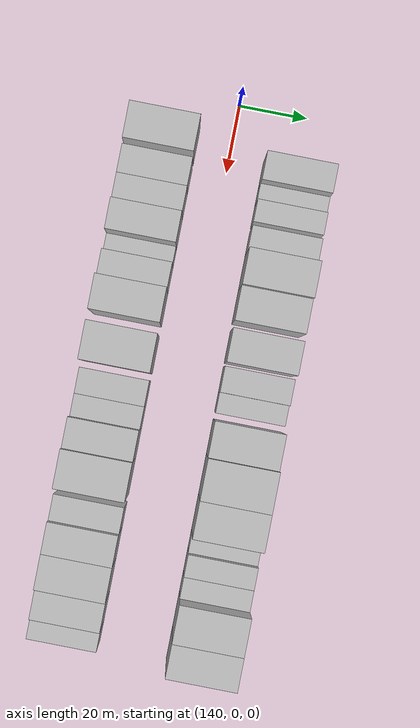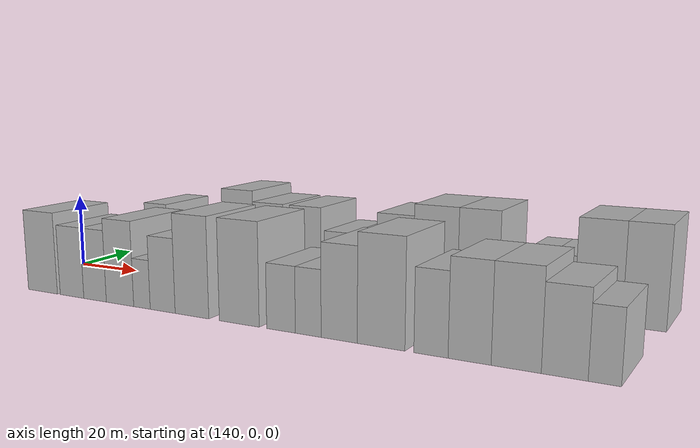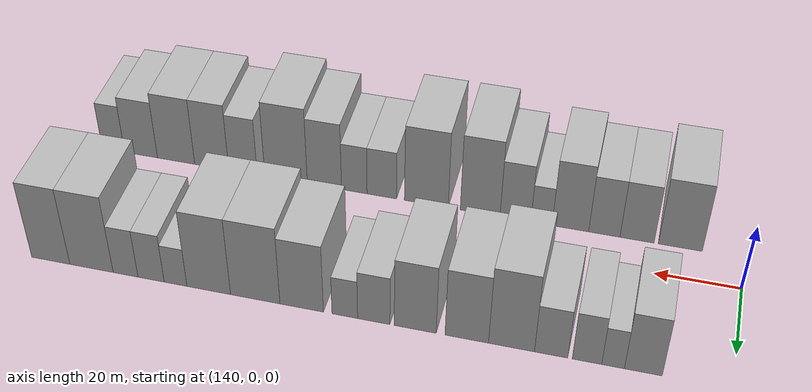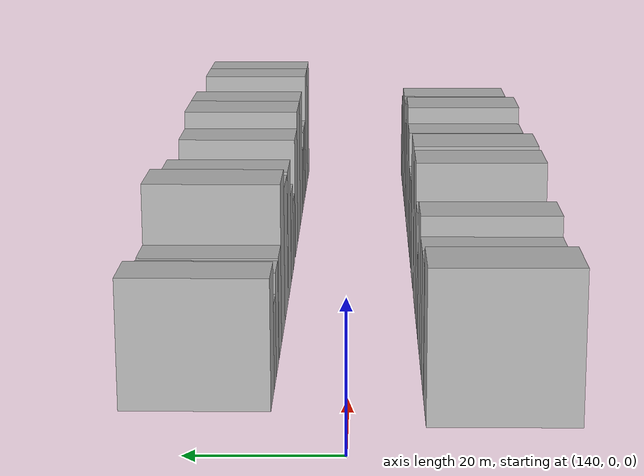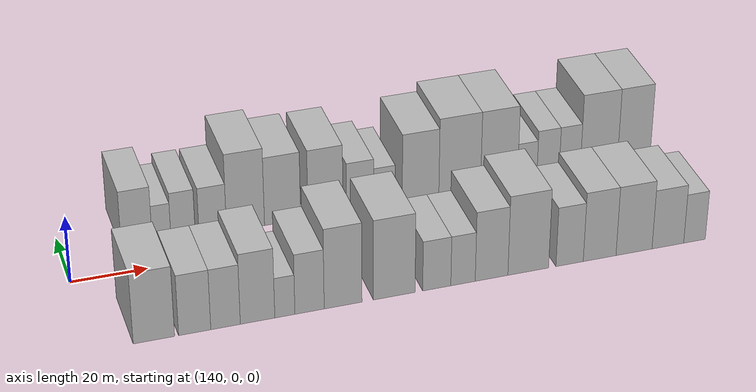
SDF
<sdf version="1.6">
 <world name="default">
  <model name="building_17">
   <static>1</static>
   <pose>159.3237 20.0000 0 0.000000 0.000000 1.570796</pose>
   <link name="link">
    <pose>0 0 9.00 0 0 0</pose>
    <collision name="collision"><geometry><box><size>20.0000 8.1764 18.0000</size></box></geometry></collision>
    <visual name="visual">
     <cast_shadows>0</cast_shadows>
     <geometry><box><size>20.0000 8.1764 18.0000</size></box></geometry>
     <material>
      <script>
       <uri>model://HANNAS_wall/materials/scripts</uri>
       <uri>model://HANNAS_wall/materials/textures</uri>
       <name>vrc/HANNAS_wall</name>
      </script>
     </material>
    </visual>
   </link>
  </model>
  <model name="building_18">
   <static>1</static>
   <pose>165.8892 20.0000 0 0.000000 0.000000 1.570796</pose>
   <link name="link">
    <pose>0 0 6.00 0 0 0</pose>
    <collision name="collision"><geometry><box><size>20.0000 4.9546 12.0000</size></box></geometry></collision>
    <visual name="visual">
     <cast_shadows>0</cast_shadows>
     <geometry><box><size>20.0000 4.9546 12.0000</size></box></geometry>
     <material>
      <script>
       <uri>model://HANNAS_wall/materials/scripts</uri>
       <uri>model://HANNAS_wall/materials/textures</uri>
       <name>vrc/HANNAS_wall</name>
      </script>
     </material>
    </visual>
   </link>
  </model>
  <model name="building_19">
   <static>1</static>
   <pose>171.5991 20.0000 0 0.000000 0.000000 1.570796</pose>
   <link name="link">
    <pose>0 0 7.50 0 0 0</pose>
    <collision name="collision"><geometry><box><size>20.0000 6.4652 15.0000</size></box></geometry></collision>
    <visual name="visual">
     <cast_shadows>0</cast_shadows>
     <geometry><box><size>20.0000 6.4652 15.0000</size></box></geometry>
     <material>
      <script>
       <uri>model://HANNAS_wall/materials/scripts</uri>
       <uri>model://HANNAS_wall/materials/textures</uri>
       <name>vrc/HANNAS_wall</name>
      </script>
     </material>
    </visual>
   </link>
  </model>
  <model name="building_20">
   <static>1</static>
   <pose>179.5096 20.0000 0 0.000000 0.000000 1.570796</pose>
   <link name="link">
    <pose>0 0 7.50 0 0 0</pose>
    <collision name="collision"><geometry><box><size>20.0000 7.3557 15.0000</size></box></geometry></collision>
    <visual name="visual">
     <cast_shadows>0</cast_shadows>
     <geometry><box><size>20.0000 7.3557 15.0000</size></box></geometry>
     <material>
      <script>
       <uri>model://HANNAS_wall/materials/scripts</uri>
       <uri>model://HANNAS_wall/materials/textures</uri>
       <name>vrc/HANNAS_wall</name>
      </script>
     </material>
    </visual>
   </link>
  </model>
  <model name="building_21">
   <static>1</static>
   <pose>188.3211 20.0000 0 0.000000 0.000000 1.570796</pose>
   <link name="link">
    <pose>0 0 12.00 0 0 0</pose>
    <collision name="collision"><geometry><box><size>20.0000 10.2673 24.0000</size></box></geometry></collision>
    <visual name="visual">
     <cast_shadows>0</cast_shadows>
     <geometry><box><size>20.0000 10.2673 24.0000</size></box></geometry>
     <material>
      <script>
       <uri>model://HANNAS_wall/materials/scripts</uri>
       <uri>model://HANNAS_wall/materials/textures</uri>
       <name>vrc/HANNAS_wall</name>
      </script>
     </material>
    </visual>
   </link>
  </model>
  <model name="building_22">
   <static>1</static>
   <pose>198.3743 20.0000 0 0.000000 0.000000 1.570796</pose>
   <link name="link">
    <pose>0 0 10.50 0 0 0</pose>
    <collision name="collision"><geometry><box><size>20.0000 9.8392 21.0000</size></box></geometry></collision>
    <visual name="visual">
     <cast_shadows>0</cast_shadows>
     <geometry><box><size>20.0000 9.8392 21.0000</size></box></geometry>
     <material>
      <script>
       <uri>model://HANNAS_wall/materials/scripts</uri>
       <uri>model://HANNAS_wall/materials/textures</uri>
       <name>vrc/HANNAS_wall</name>
      </script>
     </material>
    </visual>
   </link>
  </model>
  <model name="building_23">
   <static>1</static>
   <pose>210.1101 20.0000 0 0.000000 0.000000 1.570796</pose>
   <link name="link">
    <pose>0 0 10.50 0 0 0</pose>
    <collision name="collision"><geometry><box><size>20.0000 9.6324 21.0000</size></box></geometry></collision>
    <visual name="visual">
     <cast_shadows>0</cast_shadows>
     <geometry><box><size>20.0000 9.6324 21.0000</size></box></geometry>
     <material>
      <script>
       <uri>model://HANNAS_wall/materials/scripts</uri>
       <uri>model://HANNAS_wall/materials/textures</uri>
       <name>vrc/HANNAS_wall</name>
      </script>
     </material>
    </visual>
   </link>
  </model>
  <model name="building_24">
   <static>1</static>
   <pose>219.6738 20.0000 0 0.000000 0.000000 1.570796</pose>
   <link name="link">
    <pose>0 0 7.50 0 0 0</pose>
    <collision name="collision"><geometry><box><size>20.0000 7.4949 15.0000</size></box></geometry></collision>
    <visual name="visual">
     <cast_shadows>0</cast_shadows>
     <geometry><box><size>20.0000 7.4949 15.0000</size></box></geometry>
     <material>
      <script>
       <uri>model://HANNAS_wall/materials/scripts</uri>
       <uri>model://HANNAS_wall/materials/textures</uri>
       <name>vrc/HANNAS_wall</name>
      </script>
     </material>
    </visual>
   </link>
  </model>
  <model name="building_25">
   <static>1</static>
   <pose>226.4071 20.0000 0 0.000000 0.000000 1.570796</pose>
   <link name="link">
    <pose>0 0 6.00 0 0 0</pose>
    <collision name="collision"><geometry><box><size>20.0000 5.9717 12.0000</size></box></geometry></collision>
    <visual name="visual">
     <cast_shadows>0</cast_shadows>
     <geometry><box><size>20.0000 5.9717 12.0000</size></box></geometry>
     <material>
      <script>
       <uri>model://HANNAS_wall/materials/scripts</uri>
       <uri>model://HANNAS_wall/materials/textures</uri>
       <name>vrc/HANNAS_wall</name>
      </script>
     </material>
    </visual>
   </link>
  </model>
  <model name="building_26">
   <static>1</static>
   <pose>236.5378 20.0000 0 0.000000 0.000000 1.570796</pose>
   <link name="link">
    <pose>0 0 10.50 0 0 0</pose>
    <collision name="collision"><geometry><box><size>20.0000 10.2896 21.0000</size></box></geometry></collision>
    <visual name="visual">
     <cast_shadows>0</cast_shadows>
     <geometry><box><size>20.0000 10.2896 21.0000</size></box></geometry>
     <material>
      <script>
       <uri>model://HANNAS_wall/materials/scripts</uri>
       <uri>model://HANNAS_wall/materials/textures</uri>
       <name>vrc/HANNAS_wall</name>
      </script>
     </material>
    </visual>
   </link>
  </model>
  <model name="building_27">
   <static>1</static>
   <pose>247.5895 20.0000 0 0.000000 0.000000 1.570796</pose>
   <link name="link">
    <pose>0 0 12.00 0 0 0</pose>
    <collision name="collision"><geometry><box><size>20.0000 11.8139 24.0000</size></box></geometry></collision>
    <visual name="visual">
     <cast_shadows>0</cast_shadows>
     <geometry><box><size>20.0000 11.8139 24.0000</size></box></geometry>
     <material>
      <script>
       <uri>model://HANNAS_wall/materials/scripts</uri>
       <uri>model://HANNAS_wall/materials/textures</uri>
       <name>vrc/HANNAS_wall</name>
      </script>
     </material>
    </visual>
   </link>
  </model>
  <model name="building_28">
   <static>1</static>
   <pose>258.7789 20.0000 0 0.000000 0.000000 1.570796</pose>
   <link name="link">
    <pose>0 0 12.00 0 0 0</pose>
    <collision name="collision"><geometry><box><size>20.0000 10.5648 24.0000</size></box></geometry></collision>
    <visual name="visual">
     <cast_shadows>0</cast_shadows>
     <geometry><box><size>20.0000 10.5648 24.0000</size></box></geometry>
     <material>
      <script>
       <uri>model://HANNAS_wall/materials/scripts</uri>
       <uri>model://HANNAS_wall/materials/textures</uri>
       <name>vrc/HANNAS_wall</name>
      </script>
     </material>
    </visual>
   </link>
  </model>
  <model name="building_29">
   <static>1</static>
   <pose>266.8416 20.0000 0 0.000000 0.000000 1.570796</pose>
   <link name="link">
    <pose>0 0 6.00 0 0 0</pose>
    <collision name="collision"><geometry><box><size>20.0000 5.5606 12.0000</size></box></geometry></collision>
    <visual name="visual">
     <cast_shadows>0</cast_shadows>
     <geometry><box><size>20.0000 5.5606 12.0000</size></box></geometry>
     <material>
      <script>
       <uri>model://HANNAS_wall/materials/scripts</uri>
       <uri>model://HANNAS_wall/materials/textures</uri>
       <name>vrc/HANNAS_wall</name>
      </script>
     </material>
    </visual>
   </link>
  </model>
  <model name="building_30">
   <static>1</static>
   <pose>272.8393 20.0000 0 0.000000 0.000000 1.570796</pose>
   <link name="link">
    <pose>0 0 7.50 0 0 0</pose>
    <collision name="collision"><geometry><box><size>20.0000 6.4348 15.0000</size></box></geometry></collision>
    <visual name="visual">
     <cast_shadows>0</cast_shadows>
     <geometry><box><size>20.0000 6.4348 15.0000</size></box></geometry>
     <material>
      <script>
       <uri>model://HANNAS_wall/materials/scripts</uri>
       <uri>model://HANNAS_wall/materials/textures</uri>
       <name>vrc/HANNAS_wall</name>
      </script>
     </material>
    </visual>
   </link>
  </model>
  <model name="building_31">
   <static>1</static>
   <pose>279.1298 20.0000 0 0.000000 0.000000 1.570796</pose>
   <link name="link">
    <pose>0 0 7.50 0 0 0</pose>
    <collision name="collision"><geometry><box><size>20.0000 6.1462 15.0000</size></box></geometry></collision>
    <visual name="visual">
     <cast_shadows>0</cast_shadows>
     <geometry><box><size>20.0000 6.1462 15.0000</size></box></geometry>
     <material>
      <script>
       <uri>model://HANNAS_wall/materials/scripts</uri>
       <uri>model://HANNAS_wall/materials/textures</uri>
       <name>vrc/HANNAS_wall</name>
      </script>
     </material>
    </visual>
   </link>
  </model>
  <model name="building_32">
   <static>1</static>
   <pose>287.6257 20.0000 0 0.000000 0.000000 1.570796</pose>
   <link name="link">
    <pose>0 0 12.00 0 0 0</pose>
    <collision name="collision"><geometry><box><size>20.0000 10.8455 24.0000</size></box></geometry></collision>
    <visual name="visual">
     <cast_shadows>0</cast_shadows>
     <geometry><box><size>20.0000 10.8455 24.0000</size></box></geometry>
     <material>
      <script>
       <uri>model://HANNAS_wall/materials/scripts</uri>
       <uri>model://HANNAS_wall/materials/textures</uri>
       <name>vrc/HANNAS_wall</name>
      </script>
     </material>
    </visual>
   </link>
  </model>
  <model name="building_33">
   <static>1</static>
   <pose>297.8527 20.0000 0 0.000000 0.000000 1.570796</pose>
   <link name="link">
    <pose>0 0 12.00 0 0 0</pose>
    <collision name="collision"><geometry><box><size>20.0000 9.6086 24.0000</size></box></geometry></collision>
    <visual name="visual">
     <cast_shadows>0</cast_shadows>
     <geometry><box><size>20.0000 9.6086 24.0000</size></box></geometry>
     <material>
      <script>
       <uri>model://HANNAS_wall/materials/scripts</uri>
       <uri>model://HANNAS_wall/materials/textures</uri>
       <name>vrc/HANNAS_wall</name>
      </script>
     </material>
    </visual>
   </link>
  </model>
  <model name="building_50">
   <static>1</static>
   <pose>154.8709 -20.0000 0 0.000000 0.000000 1.570796</pose>
   <link name="link">
    <pose>0 0 10.50 0 0 0</pose>
    <collision name="collision"><geometry><box><size>20.0000 10.3533 21.0000</size></box></geometry></collision>
    <visual name="visual">
     <cast_shadows>0</cast_shadows>
     <geometry><box><size>20.0000 10.3533 21.0000</size></box></geometry>
     <material>
      <script>
       <uri>model://HANNAS_wall/materials/scripts</uri>
       <uri>model://HANNAS_wall/materials/textures</uri>
       <name>vrc/HANNAS_wall</name>
      </script>
     </material>
    </visual>
   </link>
  </model>
  <model name="building_51">
   <static>1</static>
   <pose>165.1053 -20.0000 0 0.000000 0.000000 1.570796</pose>
   <link name="link">
    <pose>0 0 9.00 0 0 0</pose>
    <collision name="collision"><geometry><box><size>20.0000 8.1156 18.0000</size></box></geometry></collision>
    <visual name="visual">
     <cast_shadows>0</cast_shadows>
     <geometry><box><size>20.0000 8.1156 18.0000</size></box></geometry>
     <material>
      <script>
       <uri>model://HANNAS_wall/materials/scripts</uri>
       <uri>model://HANNAS_wall/materials/textures</uri>
       <name>vrc/HANNAS_wall</name>
      </script>
     </material>
    </visual>
   </link>
  </model>
  <model name="building_52">
   <static>1</static>
   <pose>172.9138 -20.0000 0 0.000000 0.000000 1.570796</pose>
   <link name="link">
    <pose>0 0 9.00 0 0 0</pose>
    <collision name="collision"><geometry><box><size>20.0000 7.5015 18.0000</size></box></geometry></collision>
    <visual name="visual">
     <cast_shadows>0</cast_shadows>
     <geometry><box><size>20.0000 7.5015 18.0000</size></box></geometry>
     <material>
      <script>
       <uri>model://HANNAS_wall/materials/scripts</uri>
       <uri>model://HANNAS_wall/materials/textures</uri>
       <name>vrc/HANNAS_wall</name>
      </script>
     </material>
    </visual>
   </link>
  </model>
  <model name="building_53">
   <static>1</static>
   <pose>181.0718 -20.0000 0 0.000000 0.000000 1.570796</pose>
   <link name="link">
    <pose>0 0 10.50 0 0 0</pose>
    <collision name="collision"><geometry><box><size>20.0000 8.8145 21.0000</size></box></geometry></collision>
    <visual name="visual">
     <cast_shadows>0</cast_shadows>
     <geometry><box><size>20.0000 8.8145 21.0000</size></box></geometry>
     <material>
      <script>
       <uri>model://HANNAS_wall/materials/scripts</uri>
       <uri>model://HANNAS_wall/materials/textures</uri>
       <name>vrc/HANNAS_wall</name>
      </script>
     </material>
    </visual>
   </link>
  </model>
  <model name="building_54">
   <static>1</static>
   <pose>188.0635 -20.0000 0 0.000000 0.000000 1.570796</pose>
   <link name="link">
    <pose>0 0 6.00 0 0 0</pose>
    <collision name="collision"><geometry><box><size>20.0000 5.1688 12.0000</size></box></geometry></collision>
    <visual name="visual">
     <cast_shadows>0</cast_shadows>
     <geometry><box><size>20.0000 5.1688 12.0000</size></box></geometry>
     <material>
      <script>
       <uri>model://HANNAS_wall/materials/scripts</uri>
       <uri>model://HANNAS_wall/materials/textures</uri>
       <name>vrc/HANNAS_wall</name>
      </script>
     </material>
    </visual>
   </link>
  </model>
  <model name="building_55">
   <static>1</static>
   <pose>194.4369 -20.0000 0 0.000000 0.000000 1.570796</pose>
   <link name="link">
    <pose>0 0 9.00 0 0 0</pose>
    <collision name="collision"><geometry><box><size>20.0000 7.5782 18.0000</size></box></geometry></collision>
    <visual name="visual">
     <cast_shadows>0</cast_shadows>
     <geometry><box><size>20.0000 7.5782 18.0000</size></box></geometry>
     <material>
      <script>
       <uri>model://HANNAS_wall/materials/scripts</uri>
       <uri>model://HANNAS_wall/materials/textures</uri>
       <name>vrc/HANNAS_wall</name>
      </script>
     </material>
    </visual>
   </link>
  </model>
  <model name="building_56">
   <static>1</static>
   <pose>203.1438 -20.0000 0 0.000000 0.000000 1.570796</pose>
   <link name="link">
    <pose>0 0 12.00 0 0 0</pose>
    <collision name="collision"><geometry><box><size>20.0000 9.8355 24.0000</size></box></geometry></collision>
    <visual name="visual">
     <cast_shadows>0</cast_shadows>
     <geometry><box><size>20.0000 9.8355 24.0000</size></box></geometry>
     <material>
      <script>
       <uri>model://HANNAS_wall/materials/scripts</uri>
       <uri>model://HANNAS_wall/materials/textures</uri>
       <name>vrc/HANNAS_wall</name>
      </script>
     </material>
    </visual>
   </link>
  </model>
  <model name="building_57">
   <static>1</static>
   <pose>216.5512 -20.0000 0 0.000000 0.000000 1.570796</pose>
   <link name="link">
    <pose>0 0 12.00 0 0 0</pose>
    <collision name="collision"><geometry><box><size>20.0000 10.9795 24.0000</size></box></geometry></collision>
    <visual name="visual">
     <cast_shadows>0</cast_shadows>
     <geometry><box><size>20.0000 10.9795 24.0000</size></box></geometry>
     <material>
      <script>
       <uri>model://HANNAS_wall/materials/scripts</uri>
       <uri>model://HANNAS_wall/materials/textures</uri>
       <name>vrc/HANNAS_wall</name>
      </script>
     </material>
    </visual>
   </link>
  </model>
  <model name="building_58">
   <static>1</static>
   <pose>227.7856 -20.0000 0 0.000000 0.000000 1.570796</pose>
   <link name="link">
    <pose>0 0 7.50 0 0 0</pose>
    <collision name="collision"><geometry><box><size>20.0000 7.4893 15.0000</size></box></geometry></collision>
    <visual name="visual">
     <cast_shadows>0</cast_shadows>
     <geometry><box><size>20.0000 7.4893 15.0000</size></box></geometry>
     <material>
      <script>
       <uri>model://HANNAS_wall/materials/scripts</uri>
       <uri>model://HANNAS_wall/materials/textures</uri>
       <name>vrc/HANNAS_wall</name>
      </script>
     </material>
    </visual>
   </link>
  </model>
  <model name="building_59">
   <static>1</static>
   <pose>234.7899 -20.0000 0 0.000000 0.000000 1.570796</pose>
   <link name="link">
    <pose>0 0 7.50 0 0 0</pose>
    <collision name="collision"><geometry><box><size>20.0000 6.5193 15.0000</size></box></geometry></collision>
    <visual name="visual">
     <cast_shadows>0</cast_shadows>
     <geometry><box><size>20.0000 6.5193 15.0000</size></box></geometry>
     <material>
      <script>
       <uri>model://HANNAS_wall/materials/scripts</uri>
       <uri>model://HANNAS_wall/materials/textures</uri>
       <name>vrc/HANNAS_wall</name>
      </script>
     </material>
    </visual>
   </link>
  </model>
  <model name="building_60">
   <static>1</static>
   <pose>242.4502 -20.0000 0 0.000000 0.000000 1.570796</pose>
   <link name="link">
    <pose>0 0 10.50 0 0 0</pose>
    <collision name="collision"><geometry><box><size>20.0000 8.8014 21.0000</size></box></geometry></collision>
    <visual name="visual">
     <cast_shadows>0</cast_shadows>
     <geometry><box><size>20.0000 8.8014 21.0000</size></box></geometry>
     <material>
      <script>
       <uri>model://HANNAS_wall/materials/scripts</uri>
       <uri>model://HANNAS_wall/materials/textures</uri>
       <name>vrc/HANNAS_wall</name>
      </script>
     </material>
    </visual>
   </link>
  </model>
  <model name="building_61">
   <static>1</static>
   <pose>252.3788 -20.0000 0 0.000000 0.000000 1.570796</pose>
   <link name="link">
    <pose>0 0 12.00 0 0 0</pose>
    <collision name="collision"><geometry><box><size>20.0000 11.0557 24.0000</size></box></geometry></collision>
    <visual name="visual">
     <cast_shadows>0</cast_shadows>
     <geometry><box><size>20.0000 11.0557 24.0000</size></box></geometry>
     <material>
      <script>
       <uri>model://HANNAS_wall/materials/scripts</uri>
       <uri>model://HANNAS_wall/materials/textures</uri>
       <name>vrc/HANNAS_wall</name>
      </script>
     </material>
    </visual>
   </link>
  </model>
  <model name="building_62">
   <static>1</static>
   <pose>263.6545 -20.0000 0 0.000000 0.000000 1.570796</pose>
   <link name="link">
    <pose>0 0 9.00 0 0 0</pose>
    <collision name="collision"><geometry><box><size>20.0000 7.4956 18.0000</size></box></geometry></collision>
    <visual name="visual">
     <cast_shadows>0</cast_shadows>
     <geometry><box><size>20.0000 7.4956 18.0000</size></box></geometry>
     <material>
      <script>
       <uri>model://HANNAS_wall/materials/scripts</uri>
       <uri>model://HANNAS_wall/materials/textures</uri>
       <name>vrc/HANNAS_wall</name>
      </script>
     </material>
    </visual>
   </link>
  </model>
  <model name="building_63">
   <static>1</static>
   <pose>271.9244 -20.0000 0 0.000000 0.000000 1.570796</pose>
   <link name="link">
    <pose>0 0 10.50 0 0 0</pose>
    <collision name="collision"><geometry><box><size>20.0000 9.0444 21.0000</size></box></geometry></collision>
    <visual name="visual">
     <cast_shadows>0</cast_shadows>
     <geometry><box><size>20.0000 9.0444 21.0000</size></box></geometry>
     <material>
      <script>
       <uri>model://HANNAS_wall/materials/scripts</uri>
       <uri>model://HANNAS_wall/materials/textures</uri>
       <name>vrc/HANNAS_wall</name>
      </script>
     </material>
    </visual>
   </link>
  </model>
  <model name="building_64">
   <static>1</static>
   <pose>281.4494 -20.0000 0 0.000000 0.000000 1.570796</pose>
   <link name="link">
    <pose>0 0 10.50 0 0 0</pose>
    <collision name="collision"><geometry><box><size>20.0000 10.0056 21.0000</size></box></geometry></collision>
    <visual name="visual">
     <cast_shadows>0</cast_shadows>
     <geometry><box><size>20.0000 10.0056 21.0000</size></box></geometry>
     <material>
      <script>
       <uri>model://HANNAS_wall/materials/scripts</uri>
       <uri>model://HANNAS_wall/materials/textures</uri>
       <name>vrc/HANNAS_wall</name>
      </script>
     </material>
    </visual>
   </link>
  </model>
  <model name="building_65">
   <static>1</static>
   <pose>290.8951 -20.0000 0 0.000000 0.000000 1.570796</pose>
   <link name="link">
    <pose>0 0 9.00 0 0 0</pose>
    <collision name="collision"><geometry><box><size>20.0000 8.8858 18.0000</size></box></geometry></collision>
    <visual name="visual">
     <cast_shadows>0</cast_shadows>
     <geometry><box><size>20.0000 8.8858 18.0000</size></box></geometry>
     <material>
      <script>
       <uri>model://HANNAS_wall/materials/scripts</uri>
       <uri>model://HANNAS_wall/materials/textures</uri>
       <name>vrc/HANNAS_wall</name>
      </script>
     </material>
    </visual>
   </link>
  </model>
  <model name="building_66">
   <static>1</static>
   <pose>298.3809 -20.0000 0 0.000000 0.000000 1.570796</pose>
   <link name="link">
    <pose>0 0 7.50 0 0 0</pose>
    <collision name="collision"><geometry><box><size>20.0000 6.0858 15.0000</size></box></geometry></collision>
    <visual name="visual">
     <cast_shadows>0</cast_shadows>
     <geometry><box><size>20.0000 6.0858 15.0000</size></box></geometry>
     <material>
      <script>
       <uri>model://HANNAS_wall/materials/scripts</uri>
       <uri>model://HANNAS_wall/materials/textures</uri>
       <name>vrc/HANNAS_wall</name>
      </script>
     </material>
    </visual>
   </link>
  </model>
 </world>
</sdf>
